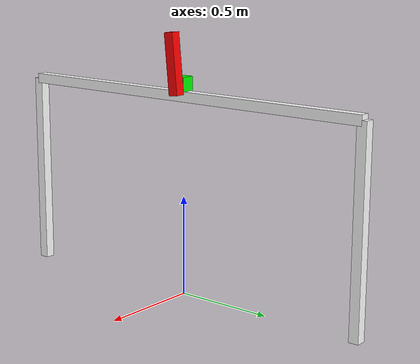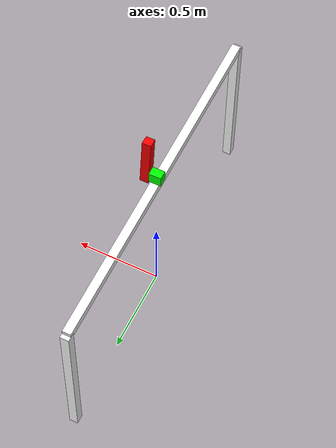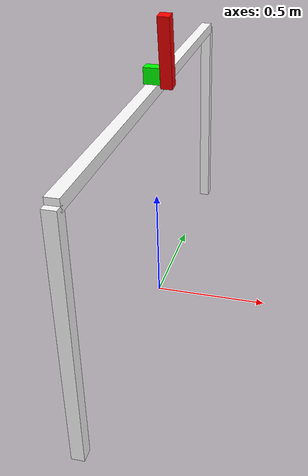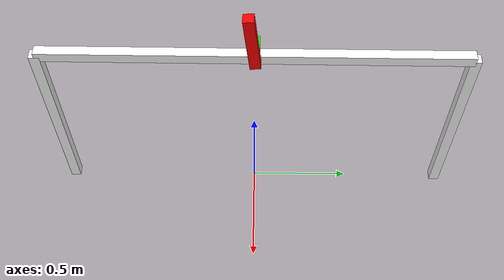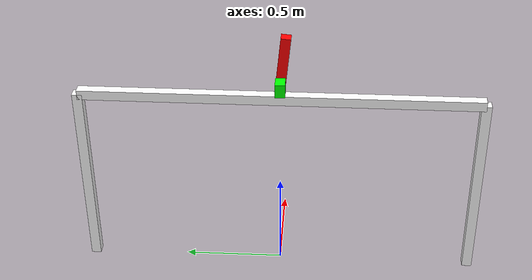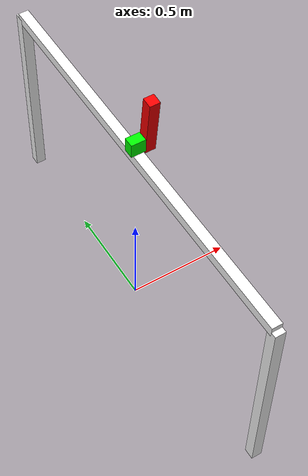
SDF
<?xml version="1.0" ?>
<sdf version='1.11'>

  <!-- Defining the world -->
  <world name = "World">

    <!-- Defining the physics  -->
    <physics name="ode_physics" type="ode">
      <max_step_size>0.001</max_step_size> <!-- Smaller step size for higher accuracy -->
      <real_time_factor>1</real_time_factor> <!-- Real-time simulation -->
      <real_time_update_rate>1000</real_time_update_rate> <!-- Update rate -->

      <!-- ODE-specific parameters -->
      <ode>
        <solver>
          <type>quick</type> <!-- Choose 'quick' or 'world' -->
          <iters>50</iters> <!-- Number of iterations -->
          <sor>1.3</sor> <!-- Successive over-relaxation parameter -->
        </solver>
        <constraints>
          <cfm>0.00001</cfm> <!-- Constraint force mixing -->
          <erp>0.2</erp> <!-- Error reduction parameter -->
        </constraints>
      </ode>
    </physics>

    <!-- Defining the inverted pendulum model -->
    <model name="inv_pendulum">

      <!-- Defining the base link  -->
      <link name="base_link">

        <!-- Define the physical properties  -->
        <inertial>
          <pose>0 0 0 0 0 0</pose>
          <mass>0.2</mass>
          <inertia>
            <ixx>0.2</ixx>
            <ixy>0</ixy>
            <ixz>0</ixz>
            <iyy>0.2</iyy>
            <iyz>0</iyz>
            <izz>0.15</izz>
          </inertia>
        </inertial>

        <!-- Define the visual properties  -->
        <visual name='base_link_visual'>
          <pose>0 0 1 1.57 0 0</pose>
          <geometry>
            <box>
              <size>0.05 0.05 2</size>
            </box>
          </geometry>
          <material>
            <diffuse>1 1 1 1</diffuse>
            <ambient>1 1 1 1</ambient>
          </material>
        </visual>

        <!-- Left rod for the frame  -->
        <visual name='left_rod'>
          <pose>0 -1 0.5 0 0 0</pose>
          <geometry>
            <box>
              <size>0.05 0.05 1</size>
            </box>
          </geometry>
          <material>
            <diffuse>1 1 1 1</diffuse>
            <ambient>1 1 1 1</ambient>
          </material>
        </visual>

        <!-- Right rod for the frame  -->
        <visual name='right_rod'>
          <pose>0 1 0.5 0 0 0</pose>
          <geometry>
            <box>
              <size>0.05 0.05 1</size>
            </box>
          </geometry>
          <material>
            <diffuse>1 1 1 1</diffuse>
            <ambient>1 1 1 1</ambient>
          </material>
        </visual>

        <!-- Closing the base link  -->
      </link>

      <!-- Link for the central piece that actually moves -->
      <link name="central_piece">
        <pose relative_to='central_piece_joint'>0 0 0 0 0 0</pose>
        <inertial>
         <pose>0 0 0 0 0 0</pose>
          <mass>0.1</mass>
          <inertia>
            <ixx>0.1</ixx>
            <ixy>0</ixy>
            <ixz>0</ixz>
            <iyy>0.1</iyy>
            <iyz>0</iyz>
            <izz>0.075</izz>
          </inertia>
        </inertial>

        <visual name='central_piece_visual'>
          <pose>0 0 0 1.57 0 0</pose>
          <material>
            <diffuse>0 1 0 1</diffuse> <!-- Green color -->
            <ambient>0 1 0 1</ambient> <!-- Green ambient -->
          </material>
          <geometry>
            <box>
              <size>.07 .07 .05</size>
            </box>
          </geometry>
        </visual>

        <collision name='central_piece_collision'>
            <pose>0 0 0 1.57 0 0</pose>
            <geometry>
                <box>
                    <size>0.07 0.07 0.05</size>
                </box>
            </geometry>
        </collision>
      </link>

      <!-- Defining the pendulum link  -->
      <link name='pendulum'>
        <pose relative_to='pendulum_joint'>0 0 0 .1 0 0</pose>
        <inertial>
          <pose>0 0 .1 0 0 0</pose>
          <mass>1.0</mass>
          <inertia>
            <ixx>0.0104</ixx>
            <ixy>0</ixy>
            <ixz>0</ixz>
            <iyy>0.0104</iyy>
            <iyz>0</iyz>
            <izz>0.0077</izz>
          </inertia>
        </inertial>

        <visual name='pendulum_visual'>
          <pose>0 0 .1 0 0 0</pose>
          <geometry>
            <box>
              <size>0.05 0.05 0.3</size>
            </box>
          </geometry>
          <material>
            <diffuse>1 0 0 1</diffuse> <!-- Red color -->
            <ambient>1 0 0 1</ambient> <!-- Red ambient -->
          </material>
        </visual>

        <collision name='pendulum_collision'>
            <pose>0 0 .1 0 0 0</pose>
            <geometry>
                <box>
                    <size>0.05 0.05 0.3</size>
                </box>
            </geometry>
        </collision>

        <!-- IMU Sensor -->
        <sensor name='imu_sensor' type='imu'>
          <pose relative_to='pendulum'>0 0 0 0 0 0</pose> <!-- Adjust the pose relative to the link -->
          <update_rate>500</update_rate> <!-- Frequency of data updates in Hz -->
          <imu>
            <angular_velocity>
              <x>
                <noise type="gaussian">
                  <mean>0</mean>
                  <stddev>0.01</stddev>
                </noise>
              </x>
              <y>
                <noise type="gaussian">
                  <mean>0</mean>
                  <stddev>0.01</stddev>
                </noise>
              </y>
              <z>
                <noise type="gaussian">
                  <mean>0</mean>
                  <stddev>0.01</stddev>
                </noise>
              </z>
            </angular_velocity>
            <linear_acceleration>
              <x>
                <noise type="gaussian">
                  <mean>0</mean>
                  <stddev>0.01</stddev>
                </noise>
              </x>
              <y>
                <noise type="gaussian">
                  <mean>0</mean>
                  <stddev>0.01</stddev>
                </noise>
              </y>
              <z>
                <noise type="gaussian">
                  <mean>0</mean>
                  <stddev>0.01</stddev>
                </noise>
              </z>
            </linear_acceleration>
          </imu>

          <!-- Defining plugin for the transmission of output data  -->
          <plugin filename="gz-sim-imu-system" name="gz::sim::systems::Imu">
            <ros>
              <namespace>/pendulum_pose</namespace>
              <remapping>~/imu/data:=imu_data</remapping>
            </ros>
            <output_type>geometry_msgs/Pose</output_type>
            <frameName>pendulum</frameName>
          </plugin>
        </sensor>
      </link>

      <!-- JOINT DEFINITIONS  -->
      <!-- Defining the connection between ground and my frame. -->
      <joint name="base_to_ground" type="fixed">
        <parent>world</parent>
        <child>base_link</child>
      </joint>

      <!-- Defining the prismatic joint  -->
      <joint name='central_piece_joint' type='prismatic'>
        <pose relative_to='base_link'>0 0 1.06 0 0 0</pose>
        <parent>base_link</parent>
        <child>central_piece</child>
        <axis>
          <xyz>0 1 0</xyz>
          <limit>
            <lower>-.9</lower>
            <upper>.9</upper>
            <effort>10000</effort>
            <velocity>inf</velocity>
          </limit>
          <dynamics>
            <spring_reference>0</spring_reference>
            <spring_stiffness>0</spring_stiffness>
          </dynamics>
        </axis>
      </joint>

      <!-- Defining the pendulum joint  -->
      <joint name='pendulum_joint' type='revolute'>
        <pose relative_to='central_piece'>0.06 0 0 0 0 0</pose>
        <parent>central_piece</parent>
        <child>pendulum</child>
        <axis>
          <xyz>1 0 0</xyz>
          <limit>
            <lower>-3.14</lower>  <!-- -180 degrees (in radians) -->
            <upper>3.14</upper>   <!-- 180 degrees (in radians) -->
          </limit>
          <dynamics>
            <spring_reference>0</spring_reference>
            <spring_stiffness>0</spring_stiffness>   <!-- Small stiffness -->
            <damping>0.01</damping>                     <!-- Small damping -->
          </dynamics>
        </axis>
      </joint>

      <!-- Defining the plugin to get the joint state of the prismatic joint  -->
      <plugin name="gz::sim::systems::JointStatePublisher" filename="libgz-sim8-joint-state-publisher-system.so">
        <ros>
          <namespace>/prismatic_joint</namespace>
        </ros>
        <joint_name>central_piece_joint</joint_name>
        <topic>/prismatic_joint/state</topic>
        <publish_rate>500</publish_rate>
      </plugin>

      <!-- Defining the plugin for controlling prismatic joint  -->
      <plugin name="gz::sim::systems::JointController" filename="libgz-sim8-joint-controller-system.so">
        <publish_rate>500</publish_rate>
        <joint_name>central_piece_joint</joint_name>

        <!-- If you want to use force commands instead of velocity -->
        <use_force_commands>true</use_force_commands>

        <!-- Gazebo topic name -->
        <topic>/pendulum_joint/command</topic>
      </plugin>

    <!-- Close the model tag -->
    </model>

    <!-- Close the world tag -->
  </world>

<!-- Close the sdf tag -->
</sdf>
